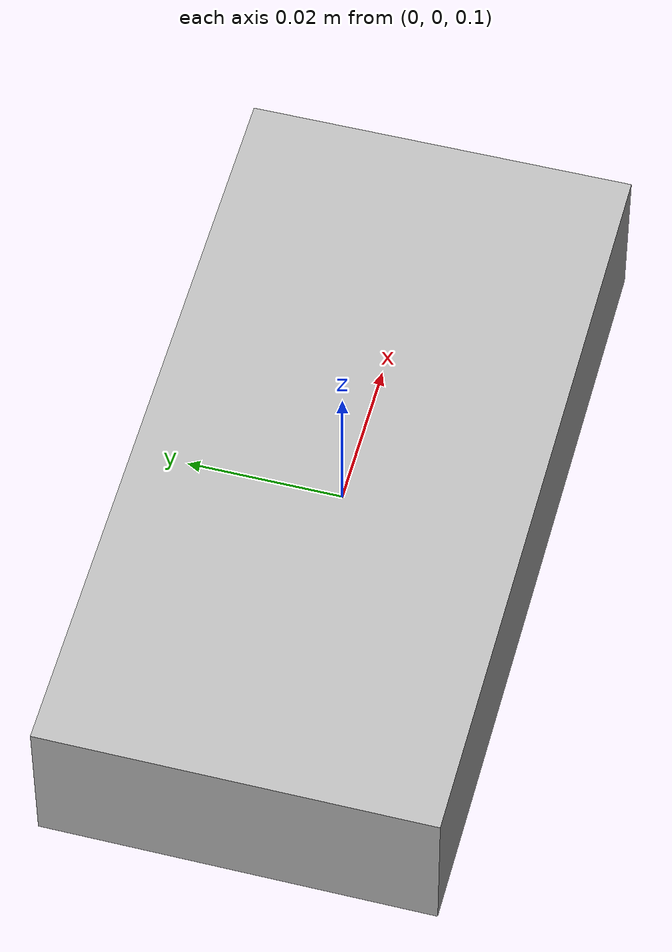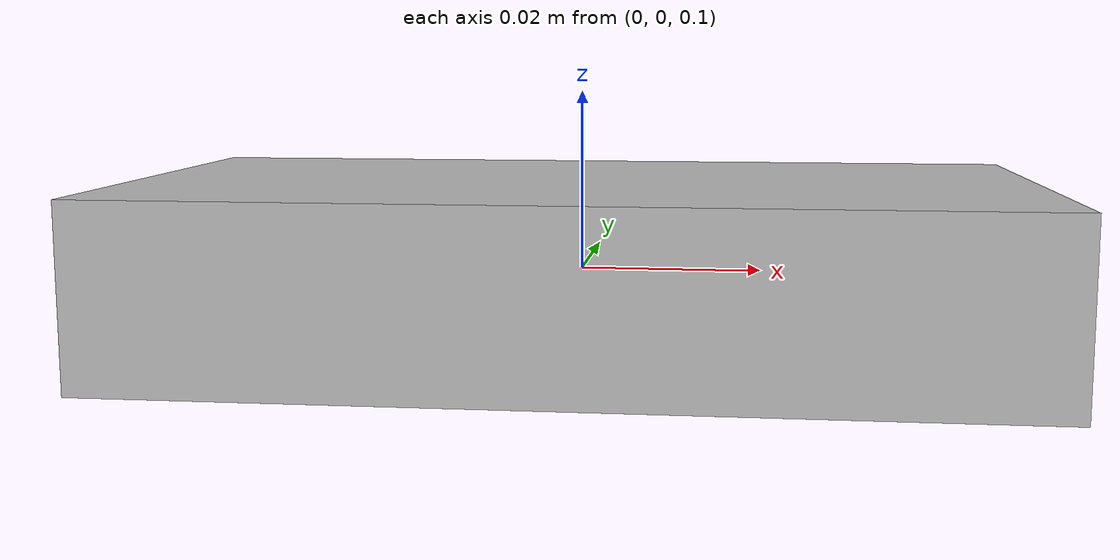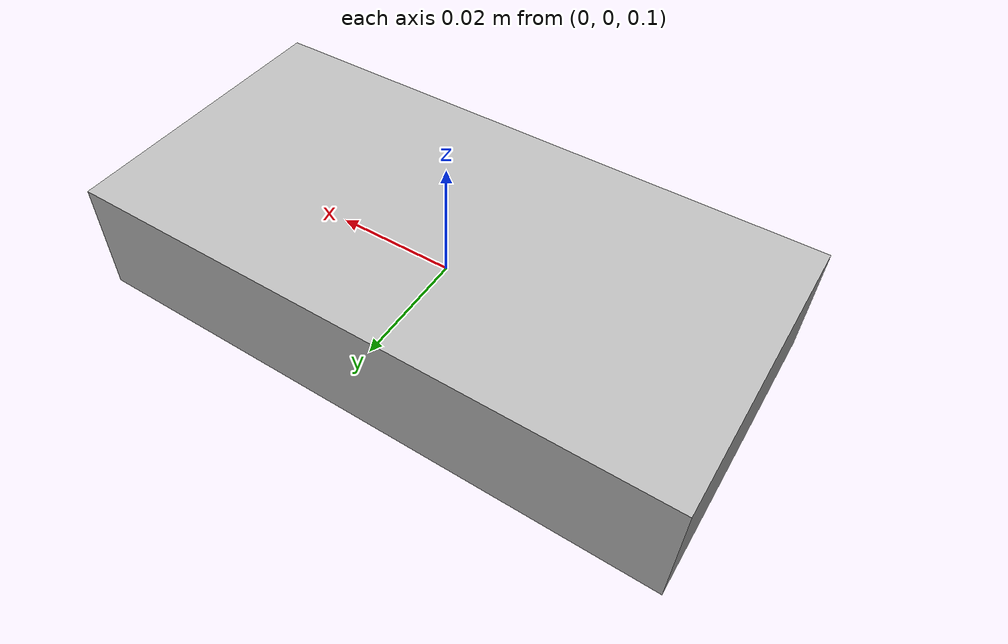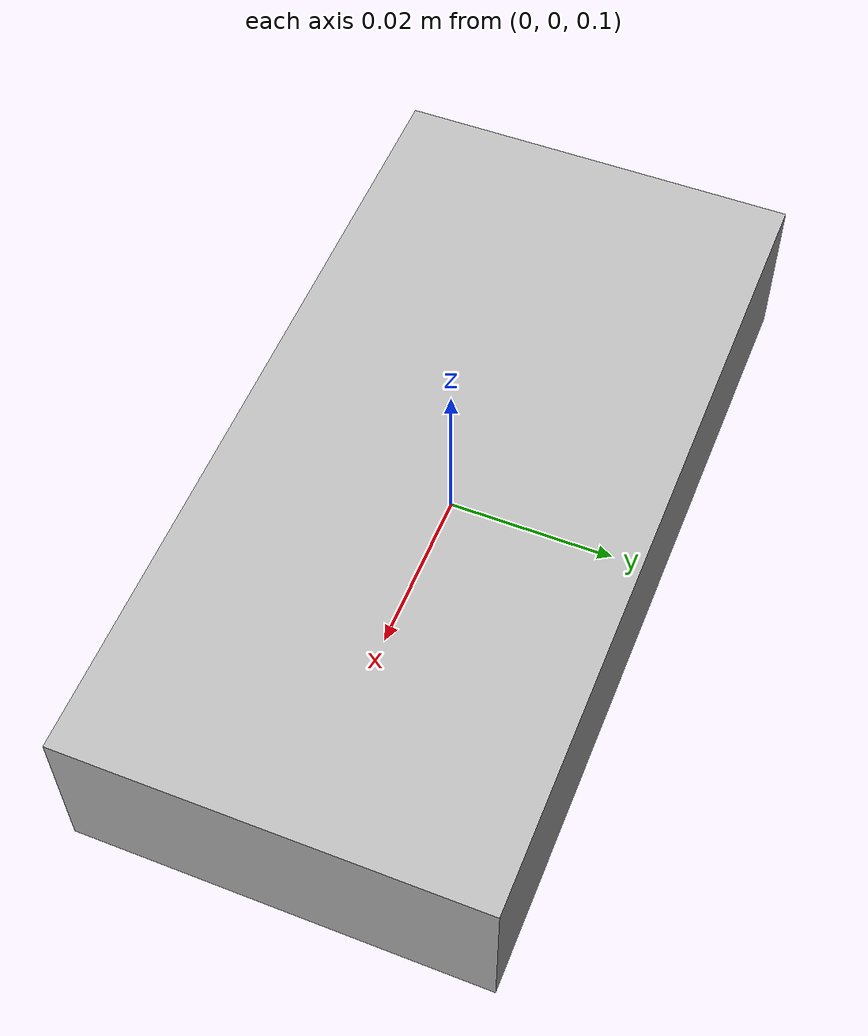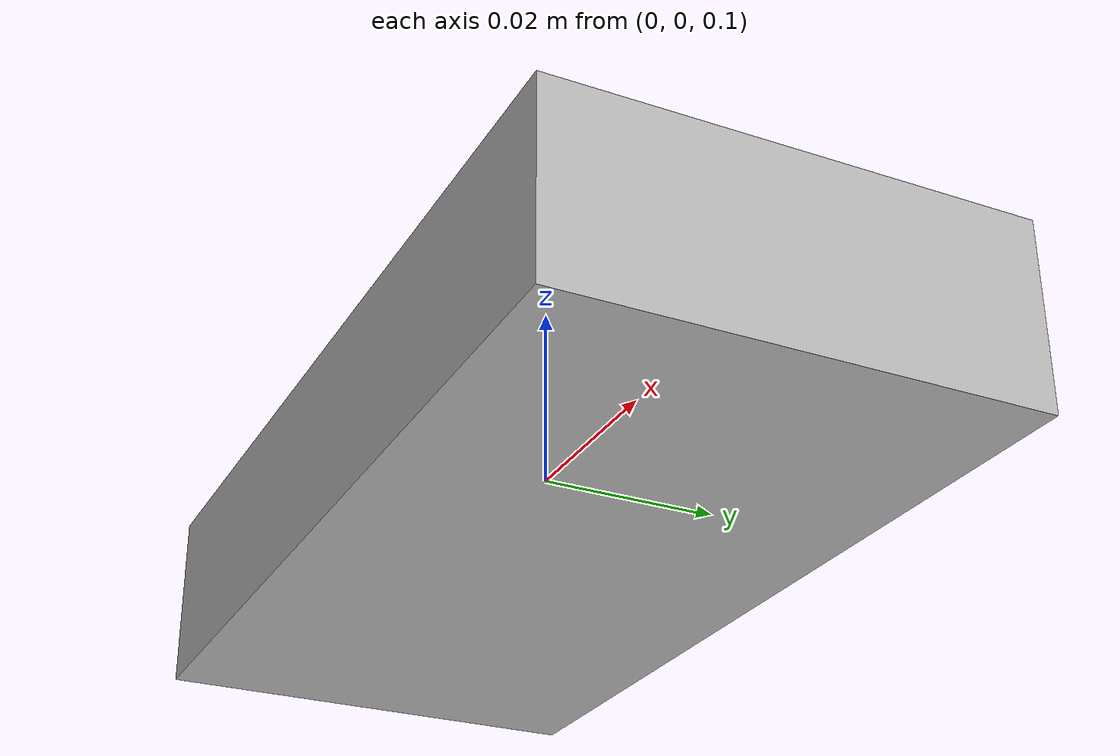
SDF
<sdf version='1.4'>
  <model name='robotino'>
    <link name='base_link'>
      <pose>0 0 0 0 -0 0</pose>
      <inertial>
        <pose>0 0 0.5 0 -0 0</pose>
        <mass>20</mass>
        <inertia>
          <ixx>1</ixx>
          <ixy>0</ixy>
          <ixz>0</ixz>
          <iyy>1</iyy>
          <iyz>0</iyz>
          <izz>1</izz>
        </inertia>
      </inertial>
      <visual name='base_link_visual'>
        <pose>0 0 0.1 0 -0 1.57079</pose>
        <geometry>
          <box>
            <size>0.05 0.1 0.02</size>
          </box>
        </geometry>
      </visual>
      <velocity_decay>
        <linear>0</linear>
        <angular>0</angular>
      </velocity_decay>
    </link>
    <link name='wheel0_link'>
      <pose>-0.13 0 0.04 0 -0 0</pose>
      <inertial>
        <pose>0 0 0 0 -0 0</pose>
        <mass>0.3</mass>
        <inertia>
          <ixx>1</ixx>
          <ixy>0</ixy>
          <ixz>0</ixz>
          <iyy>1</iyy>
          <iyz>0</iyz>
          <izz>1</izz>
        </inertia>
      </inertial>
      <collision name='wheel0_link_collision'>
        <pose>0 0 0 1.57079 -0 1.57079</pose>
        <geometry>
          <cylinder>
            <length>0.0001</length>
            <radius>0.04</radius>
          </cylinder>
        </geometry>
        <surface>
          <contact>
            <ode>
              <kp>1e+06</kp>
              <kd>100</kd>
            </ode>
          </contact>
          <friction>
            <ode>
              <mu>5</mu>
              <mu2>0</mu2>
              <fdir1>1 0 0</fdir1>
              <slip1>0</slip1>
              <slip2>1</slip2>
            </ode>
          </friction>
        </surface>
      </collision>
      <gravity>1</gravity>
      <velocity_decay>
        <linear>0</linear>
        <angular>0</angular>
      </velocity_decay>
      <self_collide>0</self_collide>
    </link>
    <joint name='wheel0_joint' type='revolute'>
      <child>wheel0_link</child>
      <parent>base_link</parent>
      <axis>
        <xyz>-1 0 0</xyz>
        <limit>
          <lower>-1e+16</lower>
          <upper>1e+16</upper>
        </limit>
        <dynamics/>
      </axis>
    </joint>
    <link name='wheel1_link'>
      <pose>0.065 0.11 0.04 0 -0 1.0472</pose>
      <inertial>
        <pose>0 0 0 0 -0 0</pose>
        <mass>0.3</mass>
        <inertia>
          <ixx>1</ixx>
          <ixy>0</ixy>
          <ixz>0</ixz>
          <iyy>1</iyy>
          <iyz>0</iyz>
          <izz>1</izz>
        </inertia>
      </inertial>
      <collision name='wheel1_link_collision'>
        <pose>0 0 0 1.57079 -0 1.57079</pose>
        <geometry>
          <cylinder>
            <length>0.0001</length>
            <radius>0.04</radius>
          </cylinder>
        </geometry>
        <surface>
          <contact>
            <ode>
              <kp>1e+06</kp>
              <kd>100</kd>
            </ode>
          </contact>
          <friction>
            <ode>
              <mu>5</mu>
              <mu2>0</mu2>
              <fdir1>1 0 0</fdir1>
              <slip1>0</slip1>
              <slip2>1</slip2>
            </ode>
          </friction>
        </surface>
      </collision>
      <gravity>1</gravity>
      <velocity_decay>
        <linear>0</linear>
        <angular>0</angular>
      </velocity_decay>
      <self_collide>0</self_collide>
    </link>
    <joint name='wheel1_joint' type='revolute'>
      <child>wheel1_link</child>
      <parent>base_link</parent>
      <axis>
        <xyz>0.500001 0.866025 0</xyz>
        <limit>
          <lower>-1e+16</lower>
          <upper>1e+16</upper>
        </limit>
        <dynamics/>
      </axis>
    </joint>
    <link name='wheel2_link'>
      <pose>0.065 -0.11 0.04 0 0 -1.0472</pose>
      <inertial>
        <pose>0 0 0 0 -0 0</pose>
        <mass>0.3</mass>
        <inertia>
          <ixx>1</ixx>
          <ixy>0</ixy>
          <ixz>0</ixz>
          <iyy>1</iyy>
          <iyz>0</iyz>
          <izz>1</izz>
        </inertia>
      </inertial>
      <collision name='wheel2_link_collision'>
        <pose>0 0 0 1.57079 -0 1.57079</pose>
        <geometry>
          <cylinder>
            <length>0.0001</length>
            <radius>0.04</radius>
          </cylinder>
        </geometry>
        <surface>
          <contact>
            <ode>
              <max_vel>1</max_vel>
              <min_depth>0</min_depth>
            </ode>
          </contact>
          <friction>
            <ode>
              <mu>0.3</mu>
              <mu2>0</mu2>
              <fdir1>1 0 0</fdir1>
              <slip1>0</slip1>
              <slip2>1</slip2>
            </ode>
          </friction>
        </surface>
      </collision>
      <gravity>1</gravity>
      <velocity_decay>
        <linear>0</linear>
        <angular>0</angular>
      </velocity_decay>
      <self_collide>0</self_collide>
    </link>
    <joint name='wheel2_joint' type='revolute'>
      <child>wheel2_link</child>
      <parent>base_link</parent>
      <axis>
        <xyz>0.500001 -0.866025 0</xyz>
        <limit>
          <lower>-1e+16</lower>
          <upper>1e+16</upper>
        </limit>
        <dynamics/>
      </axis>
    </joint>
    <static>0</static>
    <plugin name='robotino_plugin' filename='librobotino_plugin.so'/>
  </model>
</sdf>
